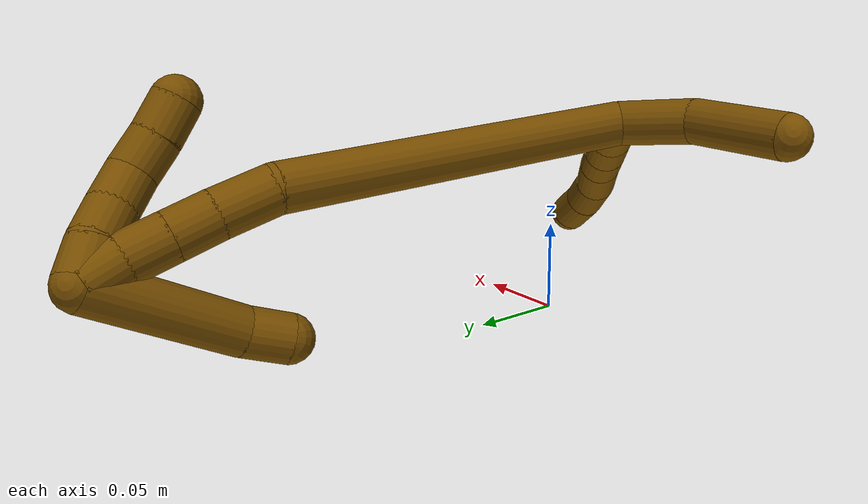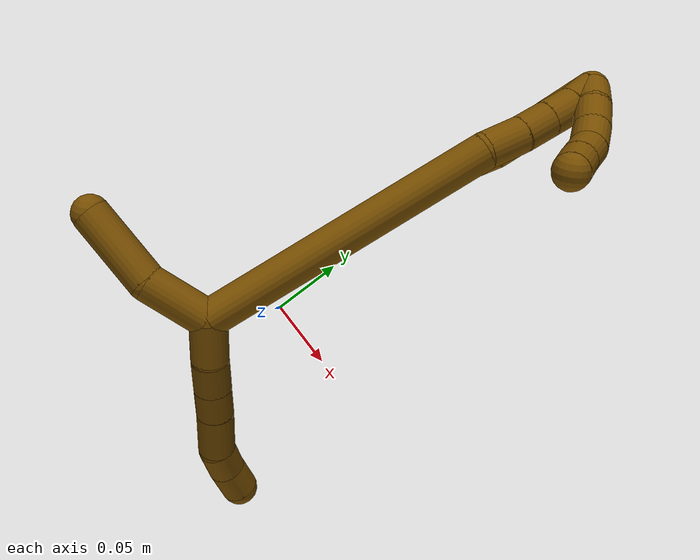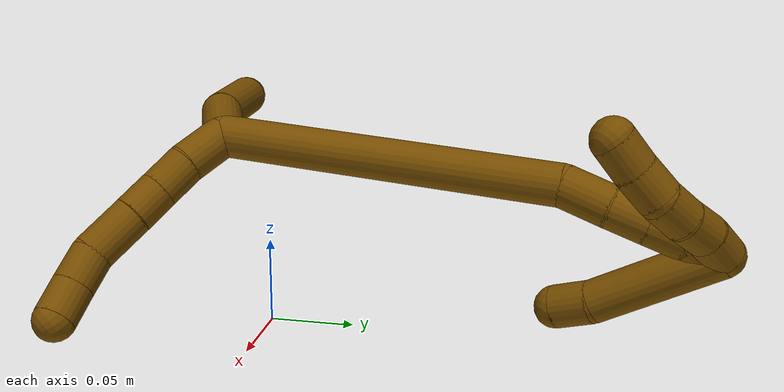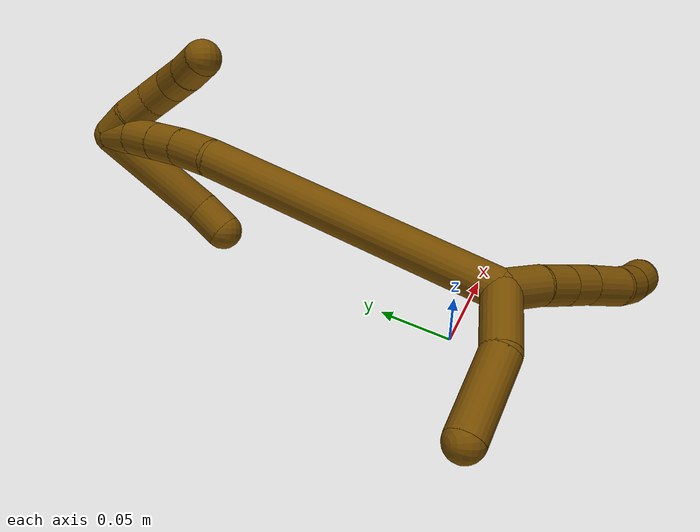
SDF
<sdf version="1.7">
 <world name="default">
  <model name="photoneo_s_sensor">
   <static>1</static>
   <pose>0 0 2 1.57079 1.57079 3.14159</pose>
   <link name="link">
    <inertial><mass>0.1</mass></inertial>
    <sensor name="sensor" type="depth">
     <update_rate>30</update_rate>
     <camera>
      <horizontal_fov>1.22</horizontal_fov>
      <image><width>1920</width><height>1200</height><format>B8G8R8</format></image>
      <clip><near>0.1</near><far>4</far></clip>
      <depth_camera><output>points</output></depth_camera>
     </camera>
     <plugin name="camera_plugin" filename="libgazebo_ros_depth_camera.so">
      <baseline>0.2</baseline>
      <alwaysOn>1</alwaysOn>
      <updateRate>0.0</updateRate>
      <cameraName>camera_ir</cameraName>
      <imageTopicName>/camera/color/image_raw</imageTopicName>
      <cameraInfoTopicName>/camera/color/camera_info</cameraInfoTopicName>
      <depthImageTopicName>/camera/depth/image_raw</depthImageTopicName>
      <depthImageCameraInfoTopicName>/camera/depth/camera_info</depthImageCameraInfoTopicName>
      <pointCloudTopicName>/camera/depth/points</pointCloudTopicName>
      <frameName>fr_optical</frameName>
      <pointCloudCutoff>0.1</pointCloudCutoff>
      <pointCloudCutoffMax>2.0</pointCloudCutoffMax>
      <distortionK1>0</distortionK1>
      <distortionK2>0</distortionK2>
      <distortionK3>0</distortionK3>
      <distortionT1>0</distortionT1>
      <distortionT2>0</distortionT2>
      <CxPrime>0</CxPrime>
      <Cx>0</Cx>
      <Cy>0</Cy>
      <focalLength>0</focalLength>
      <hackBaseline>0</hackBaseline>
     </plugin>
    </sensor>
   </link>
  </model>
  <model name="bin">
   <static>1</static>
   <link name="bottom">
    <collision name="collision-bottom">
     <pose>0 0 -0.01 0 -0 0</pose>
     <geometry><box><size>0.8 0.6 0.02</size></box></geometry>
     <surface>
      <friction><ode><mu>100</mu><mu2>100</mu2></ode></friction>
      <contact><collide_bitmask>65535</collide_bitmask></contact>
     </surface>
    </collision>
   </link>
   <link name="west_wall">
    <collision name="collision-west_wall">
     <pose>-0.41 0 0.1 0 -0 0</pose>
     <geometry><box><size>0.02 0.6 0.2</size></box></geometry>
     <surface>
      <friction><ode><mu>100</mu><mu2>100</mu2></ode></friction>
      <contact><collide_bitmask>65535</collide_bitmask></contact>
     </surface>
    </collision>
   </link>
   <link name="east_wall">
    <collision name="collision-east_wall">
     <pose>0.41 0 0.1 0 -0 0</pose>
     <geometry><box><size>0.02 0.6 0.2</size></box></geometry>
     <surface>
      <friction><ode><mu>100</mu><mu2>100</mu2></ode></friction>
      <contact><collide_bitmask>65535</collide_bitmask></contact>
     </surface>
    </collision>
   </link>
   <link name="south_wall">
    <collision name="collision-south_wall">
     <pose>0 -0.31 0.1 0 -0 0</pose>
     <geometry><box><size>0.8 0.02 0.2</size></box></geometry>
     <surface>
      <friction><ode><mu>100</mu><mu2>100</mu2></ode></friction>
      <contact><collide_bitmask>65535</collide_bitmask></contact>
     </surface>
    </collision>
   </link>
   <link name="north_wall">
    <collision name="collision-north_wall">
     <pose>0 0.31 0.1 0 -0 0</pose>
     <geometry><box><size>0.8 0.02 0.2</size></box></geometry>
     <surface>
      <friction><ode><mu>100</mu><mu2>100</mu2></ode></friction>
      <contact><collide_bitmask>65535</collide_bitmask></contact>
     </surface>
    </collision>
   </link>
  </model>
  <model name="12">
   <static>0</static>
   <link name="12">
    <collision name="collision-cylinder-e_1_2_8">
     <pose>0.000113 0.001056 -0.014886 -3.07079 0.007578 -0.213165</pose>
     <geometry><cylinder><radius>0.0125</radius><length>0.029848</length></cylinder></geometry>
     <surface>
      <friction><ode><mu>1.16</mu><mu2>1.16</mu2><slip1>0</slip1><slip2>0</slip2></ode></friction>
      <contact><ode><kp>1e+06</kp><kd>1</kd><max_vel>0</max_vel><min_depth>0.001</min_depth></ode></contact>
     </surface>
    </collision>
    <visual name="visual-cylinder-e_1_2_8">
     <pose>0.000113 0.001056 -0.014886 -3.07079 0.007578 -0.213165</pose>
     <geometry><cylinder><radius>0.0125</radius><length>0.029848</length></cylinder></geometry>
     <material><ambient>0.466667 0.301961 0 1</ambient></material>
    </visual>
    <collision name="collision-cylinder-e_2_8_9">
     <pose>-0.001324 0.003108 -0.041035 -3.05332 -0.136235 1.99259</pose>
     <geometry><cylinder><radius>0.0125</radius><length>0.022825</length></cylinder></geometry>
     <surface>
      <friction><ode><mu>1.16</mu><mu2>1.16</mu2><slip1>0</slip1><slip2>0</slip2></ode></friction>
      <contact><ode><kp>1e+06</kp><kd>1</kd><max_vel>0</max_vel><min_depth>0.001</min_depth></ode></contact>
     </surface>
    </collision>
    <visual name="visual-cylinder-e_2_8_9">
     <pose>-0.001324 0.003108 -0.041035 -3.05332 -0.136235 1.99259</pose>
     <geometry><cylinder><radius>0.0125</radius><length>0.022825</length></cylinder></geometry>
     <material><ambient>0.466667 0.301961 0 1</ambient></material>
    </visual>
    <collision name="collision-cylinder-e_3_9_10">
     <pose>-0.004222 0.005076 -0.062698 -3.04852 -0.128325 1.88723</pose>
     <geometry><cylinder><radius>0.0125</radius><length>0.021065</length></cylinder></geometry>
     <surface>
      <friction><ode><mu>1.16</mu><mu2>1.16</mu2><slip1>0</slip1><slip2>0</slip2></ode></friction>
      <contact><ode><kp>1e+06</kp><kd>1</kd><max_vel>0</max_vel><min_depth>0.001</min_depth></ode></contact>
     </surface>
    </collision>
    <visual name="visual-cylinder-e_3_9_10">
     <pose>-0.004222 0.005076 -0.062698 -3.04852 -0.128325 1.88723</pose>
     <geometry><cylinder><radius>0.0125</radius><length>0.021065</length></cylinder></geometry>
     <material><ambient>0.466667 0.301961 0 1</ambient></material>
    </visual>
    <collision name="collision-cylinder-e_4_10_11">
     <pose>-0.007854 0.006801 -0.088804 -3.09357 -0.144293 2.5</pose>
     <geometry><cylinder><radius>0.0125</radius><length>0.031776</length></cylinder></geometry>
     <surface>
      <friction><ode><mu>1.16</mu><mu2>1.16</mu2><slip1>0</slip1><slip2>0</slip2></ode></friction>
      <contact><ode><kp>1e+06</kp><kd>1</kd><max_vel>0</max_vel><min_depth>0.001</min_depth></ode></contact>
     </surface>
    </collision>
    <visual name="visual-cylinder-e_4_10_11">
     <pose>-0.007854 0.006801 -0.088804 -3.09357 -0.144293 2.5</pose>
     <geometry><cylinder><radius>0.0125</radius><length>0.031776</length></cylinder></geometry>
     <material><ambient>0.466667 0.301961 0 1</ambient></material>
    </visual>
    <collision name="collision-cylinder-e_5_11_12">
     <pose>-0.013383 0.01088 -0.114557 -2.82215 -0.297485 1.49852</pose>
     <geometry><cylinder><radius>0.0125</radius><length>0.022139</length></cylinder></geometry>
     <surface>
      <friction><ode><mu>1.16</mu><mu2>1.16</mu2><slip1>0</slip1><slip2>0</slip2></ode></friction>
      <contact><ode><kp>1e+06</kp><kd>1</kd><max_vel>0</max_vel><min_depth>0.001</min_depth></ode></contact>
     </surface>
    </collision>
    <visual name="visual-cylinder-e_5_11_12">
     <pose>-0.013383 0.01088 -0.114557 -2.82215 -0.297485 1.49852</pose>
     <geometry><cylinder><radius>0.0125</radius><length>0.022139</length></cylinder></geometry>
     <material><ambient>0.466667 0.301961 0 1</ambient></material>
    </visual>
    <collision name="collision-cylinder-e_6_12_6">
     <pose>-0.01921 0.018884 -0.134416 -2.69645 -0.233162 0.955032</pose>
     <geometry><cylinder><radius>0.0125</radius><length>0.022347</length></cylinder></geometry>
     <surface>
      <friction><ode><mu>1.16</mu><mu2>1.16</mu2><slip1>0</slip1><slip2>0</slip2></ode></friction>
      <contact><ode><kp>1e+06</kp><kd>1</kd><max_vel>0</max_vel><min_depth>0.001</min_depth></ode></contact>
     </surface>
    </collision>
    <visual name="visual-cylinder-e_6_12_6">
     <pose>-0.01921 0.018884 -0.134416 -2.69645 -0.233162 0.955032</pose>
     <geometry><cylinder><radius>0.0125</radius><length>0.022347</length></cylinder></geometry>
     <material><ambient>0.466667 0.301961 0 1</ambient></material>
    </visual>
    <collision name="collision-cylinder-e_1_2_13">
     <pose>-0.002742 -0.019636 0.009624 1.11509 -0.124736 -0.077839</pose>
     <geometry><cylinder><radius>0.0125</radius><length>0.044078</length></cylinder></geometry>
     <surface>
      <friction><ode><mu>1.16</mu><mu2>1.16</mu2><slip1>0</slip1><slip2>0</slip2></ode></friction>
      <contact><ode><kp>1e+06</kp><kd>1</kd><max_vel>0</max_vel><min_depth>0.001</min_depth></ode></contact>
     </surface>
    </collision>
    <visual name="visual-cylinder-e_1_2_13">
     <pose>-0.002742 -0.019636 0.009624 1.11509 -0.124736 -0.077839</pose>
     <geometry><cylinder><radius>0.0125</radius><length>0.044078</length></cylinder></geometry>
     <material><ambient>0.466667 0.301961 0 1</ambient></material>
    </visual>
    <collision name="collision-cylinder-e_2_13_5">
     <pose>-0.015275 -0.05894 0.036543 0.849514 -0.357762 -0.163197</pose>
     <geometry><cylinder><radius>0.0125</radius><length>0.055922</length></cylinder></geometry>
     <surface>
      <friction><ode><mu>1.16</mu><mu2>1.16</mu2><slip1>0</slip1><slip2>0</slip2></ode></friction>
      <contact><ode><kp>1e+06</kp><kd>1</kd><max_vel>0</max_vel><min_depth>0.001</min_depth></ode></contact>
     </surface>
    </collision>
    <visual name="visual-cylinder-e_2_13_5">
     <pose>-0.015275 -0.05894 0.036543 0.849514 -0.357762 -0.163197</pose>
     <geometry><cylinder><radius>0.0125</radius><length>0.055922</length></cylinder></geometry>
     <material><ambient>0.466667 0.301961 0 1</ambient></material>
    </visual>
    <collision name="collision-cylinder-e_1_2_14">
     <pose>-0.03006 0.082792 0.053447 -0.997551 -0.296075 0.162109</pose>
     <geometry><cylinder><radius>0.0125</radius><length>0.206055</length></cylinder></geometry>
     <surface>
      <friction><ode><mu>1.16</mu><mu2>1.16</mu2><slip1>0</slip1><slip2>0</slip2></ode></friction>
      <contact><ode><kp>1e+06</kp><kd>1</kd><max_vel>0</max_vel><min_depth>0.001</min_depth></ode></contact>
     </surface>
    </collision>
    <visual name="visual-cylinder-e_1_2_14">
     <pose>-0.03006 0.082792 0.053447 -0.997551 -0.296075 0.162109</pose>
     <geometry><cylinder><radius>0.0125</radius><length>0.206055</length></cylinder></geometry>
     <material><ambient>0.466667 0.301961 0 1</ambient></material>
    </visual>
    <collision name="collision-cylinder-e_2_14_15">
     <pose>-0.06691 0.177602 0.111395 -1.21242 -0.486623 0.340852</pose>
     <geometry><cylinder><radius>0.0125</radius><length>0.029038</length></cylinder></geometry>
     <surface>
      <friction><ode><mu>1.16</mu><mu2>1.16</mu2><slip1>0</slip1><slip2>0</slip2></ode></friction>
      <contact><ode><kp>1e+06</kp><kd>1</kd><max_vel>0</max_vel><min_depth>0.001</min_depth></ode></contact>
     </surface>
    </collision>
    <visual name="visual-cylinder-e_2_14_15">
     <pose>-0.06691 0.177602 0.111395 -1.21242 -0.486623 0.340852</pose>
     <geometry><cylinder><radius>0.0125</radius><length>0.029038</length></cylinder></geometry>
     <material><ambient>0.466667 0.301961 0 1</ambient></material>
    </visual>
    <collision name="collision-cylinder-e_3_15_16">
     <pose>-0.079512 0.198367 0.120056 -1.12689 -0.54051 0.346525</pose>
     <geometry><cylinder><radius>0.0125</radius><length>0.022593</length></cylinder></geometry>
     <surface>
      <friction><ode><mu>1.16</mu><mu2>1.16</mu2><slip1>0</slip1><slip2>0</slip2></ode></friction>
      <contact><ode><kp>1e+06</kp><kd>1</kd><max_vel>0</max_vel><min_depth>0.001</min_depth></ode></contact>
     </surface>
    </collision>
    <visual name="visual-cylinder-e_3_15_16">
     <pose>-0.079512 0.198367 0.120056 -1.12689 -0.54051 0.346525</pose>
     <geometry><cylinder><radius>0.0125</radius><length>0.022593</length></cylinder></geometry>
     <material><ambient>0.466667 0.301961 0 1</ambient></material>
    </visual>
    <collision name="collision-cylinder-e_4_16_17">
     <pose>-0.090996 0.215684 0.128349 -1.12145 -0.537445 0.342472</pose>
     <geometry><cylinder><radius>0.0125</radius><length>0.022152</length></cylinder></geometry>
     <surface>
      <friction><ode><mu>1.16</mu><mu2>1.16</mu2><slip1>0</slip1><slip2>0</slip2></ode></friction>
      <contact><ode><kp>1e+06</kp><kd>1</kd><max_vel>0</max_vel><min_depth>0.001</min_depth></ode></contact>
     </surface>
    </collision>
    <visual name="visual-cylinder-e_4_16_17">
     <pose>-0.090996 0.215684 0.128349 -1.12145 -0.537445 0.342472</pose>
     <geometry><cylinder><radius>0.0125</radius><length>0.022152</length></cylinder></geometry>
     <material><ambient>0.466667 0.301961 0 1</ambient></material>
    </visual>
    <collision name="collision-cylinder-e_5_17_1">
     <pose>-0.102706 0.231121 0.136725 -1.01728 -0.642427 0.36688</pose>
     <geometry><cylinder><radius>0.0125</radius><length>0.020162</length></cylinder></geometry>
     <surface>
      <friction><ode><mu>1.16</mu><mu2>1.16</mu2><slip1>0</slip1><slip2>0</slip2></ode></friction>
      <contact><ode><kp>1e+06</kp><kd>1</kd><max_vel>0</max_vel><min_depth>0.001</min_depth></ode></contact>
     </surface>
    </collision>
    <visual name="visual-cylinder-e_5_17_1">
     <pose>-0.102706 0.231121 0.136725 -1.01728 -0.642427 0.36688</pose>
     <geometry><cylinder><radius>0.0125</radius><length>0.020162</length></cylinder></geometry>
     <material><ambient>0.466667 0.301961 0 1</ambient></material>
    </visual>
    <collision name="collision-cylinder-e_1_1_18">
     <pose>-0.116309 0.210793 0.114392 2.34469 -0.196339 -0.459635</pose>
     <geometry><cylinder><radius>0.0125</radius><length>0.077537</length></cylinder></geometry>
     <surface>
      <friction><ode><mu>1.16</mu><mu2>1.16</mu2><slip1>0</slip1><slip2>0</slip2></ode></friction>
      <contact><ode><kp>1e+06</kp><kd>1</kd><max_vel>0</max_vel><min_depth>0.001</min_depth></ode></contact>
     </surface>
    </collision>
    <visual name="visual-cylinder-e_1_1_18">
     <pose>-0.116309 0.210793 0.114392 2.34469 -0.196339 -0.459635</pose>
     <geometry><cylinder><radius>0.0125</radius><length>0.077537</length></cylinder></geometry>
     <material><ambient>0.466667 0.301961 0 1</ambient></material>
    </visual>
    <collision name="collision-cylinder-e_2_18_4">
     <pose>-0.12516 0.174129 0.081916 2.12803 -0.114919 -0.2065</pose>
     <geometry><cylinder><radius>0.0125</radius><length>0.022463</length></cylinder></geometry>
     <surface>
      <friction><ode><mu>1.16</mu><mu2>1.16</mu2><slip1>0</slip1><slip2>0</slip2></ode></friction>
      <contact><ode><kp>1e+06</kp><kd>1</kd><max_vel>0</max_vel><min_depth>0.001</min_depth></ode></contact>
     </surface>
    </collision>
    <visual name="visual-cylinder-e_2_18_4">
     <pose>-0.12516 0.174129 0.081916 2.12803 -0.114919 -0.2065</pose>
     <geometry><cylinder><radius>0.0125</radius><length>0.022463</length></cylinder></geometry>
     <material><ambient>0.466667 0.301961 0 1</ambient></material>
    </visual>
    <collision name="collision-cylinder-e_1_1_19">
     <pose>-0.09935 0.23733 0.13761 2.94823 1.22161 2.86629</pose>
     <geometry><cylinder><radius>0.0125</radius><length>0.02</length></cylinder></geometry>
     <surface>
      <friction><ode><mu>1.16</mu><mu2>1.16</mu2><slip1>0</slip1><slip2>0</slip2></ode></friction>
      <contact><ode><kp>1e+06</kp><kd>1</kd><max_vel>0</max_vel><min_depth>0.001</min_depth></ode></contact>
     </surface>
    </collision>
    <visual name="visual-cylinder-e_1_1_19">
     <pose>-0.09935 0.23733 0.13761 2.94823 1.22161 2.86629</pose>
     <geometry><cylinder><radius>0.0125</radius><length>0.02</length></cylinder></geometry>
     <material><ambient>0.466667 0.301961 0 1</ambient></material>
    </visual>
    <collision name="collision-cylinder-e_2_19_20">
     <pose>-0.081285 0.235564 0.129391 2.91757 1.04872 2.75743</pose>
     <geometry><cylinder><radius>0.0125</radius><length>0.02</length></cylinder></geometry>
     <surface>
      <friction><ode><mu>1.16</mu><mu2>1.16</mu2><slip1>0</slip1><slip2>0</slip2></ode></friction>
      <contact><ode><kp>1e+06</kp><kd>1</kd><max_vel>0</max_vel><min_depth>0.001</min_depth></ode></contact>
     </surface>
    </collision>
    <visual name="visual-cylinder-e_2_19_20">
     <pose>-0.081285 0.235564 0.129391 2.91757 1.04872 2.75743</pose>
     <geometry><cylinder><radius>0.0125</radius><length>0.02</length></cylinder></geometry>
     <material><ambient>0.466667 0.301961 0 1</ambient></material>
    </visual>
    <collision name="collision-cylinder-e_3_20_21">
     <pose>-0.063665 0.232238 0.120663 2.6205 1.10886 2.32847</pose>
     <geometry><cylinder><radius>0.0125</radius><length>0.02</length></cylinder></geometry>
     <surface>
      <friction><ode><mu>1.16</mu><mu2>1.16</mu2><slip1>0</slip1><slip2>0</slip2></ode></friction>
      <contact><ode><kp>1e+06</kp><kd>1</kd><max_vel>0</max_vel><min_depth>0.001</min_depth></ode></contact>
     </surface>
    </collision>
    <visual name="visual-cylinder-e_3_20_21">
     <pose>-0.063665 0.232238 0.120663 2.6205 1.10886 2.32847</pose>
     <geometry><cylinder><radius>0.0125</radius><length>0.02</length></cylinder></geometry>
     <material><ambient>0.466667 0.301961 0 1</ambient></material>
    </visual>
    <collision name="collision-cylinder-e_4_21_22">
     <pose>-0.045878 0.225544 0.115418 1.87 1.08346 1.36811</pose>
     <geometry><cylinder><radius>0.0125</radius><length>0.02</length></cylinder></geometry>
     <surface>
      <friction><ode><mu>1.16</mu><mu2>1.16</mu2><slip1>0</slip1><slip2>0</slip2></ode></friction>
      <contact><ode><kp>1e+06</kp><kd>1</kd><max_vel>0</max_vel><min_depth>0.001</min_depth></ode></contact>
     </surface>
    </collision>
    <visual name="visual-cylinder-e_4_21_22">
     <pose>-0.045878 0.225544 0.115418 1.87 1.08346 1.36811</pose>
     <geometry><cylinder><radius>0.0125</radius><length>0.02</length></cylinder></geometry>
     <material><ambient>0.466667 0.301961 0 1</ambient></material>
    </visual>
    <collision name="collision-cylinder-e_5_22_3">
     <pose>-0.027874 0.217189 0.11309 1.81021 1.15986 1.39051</pose>
     <geometry><cylinder><radius>0.0125</radius><length>0.02</length></cylinder></geometry>
     <surface>
      <friction><ode><mu>1.16</mu><mu2>1.16</mu2><slip1>0</slip1><slip2>0</slip2></ode></friction>
      <contact><ode><kp>1e+06</kp><kd>1</kd><max_vel>0</max_vel><min_depth>0.001</min_depth></ode></contact>
     </surface>
    </collision>
    <visual name="visual-cylinder-e_5_22_3">
     <pose>-0.027874 0.217189 0.11309 1.81021 1.15986 1.39051</pose>
     <geometry><cylinder><radius>0.0125</radius><length>0.02</length></cylinder></geometry>
     <material><ambient>0.466667 0.301961 0 1</ambient></material>
    </visual>
    <collision name="collision-sphere-3">
     <pose>-0.018707 0.213308 0.112143 0 -0 0</pose>
     <geometry><sphere><radius>0.0125</radius></sphere></geometry>
     <surface>
      <friction><ode><mu>1.16</mu><mu2>1.16</mu2><slip1>0</slip1><slip2>0</slip2></ode></friction>
      <contact><ode><kp>1e+06</kp><kd>1</kd><max_vel>0</max_vel><min_depth>0.001</min_depth></ode></contact>
     </surface>
    </collision>
    <visual name="visual-sphere-3">
     <pose>-0.018707 0.213308 0.112143 0 -0 0</pose>
     <geometry><sphere><radius>0.0125</radius></sphere></geometry>
     <material><ambient>0.466667 0.301961 0 1</ambient></material>
    </visual>
    <collision name="collision-sphere-22">
     <pose>-0.037042 0.22107 0.114037 0 -0 0</pose>
     <geometry><sphere><radius>0.0125</radius></sphere></geometry>
     <surface>
      <friction><ode><mu>1.16</mu><mu2>1.16</mu2><slip1>0</slip1><slip2>0</slip2></ode></friction>
      <contact><ode><kp>1e+06</kp><kd>1</kd><max_vel>0</max_vel><min_depth>0.001</min_depth></ode></contact>
     </surface>
    </collision>
    <visual name="visual-sphere-22">
     <pose>-0.037042 0.22107 0.114037 0 -0 0</pose>
     <geometry><sphere><radius>0.0125</radius></sphere></geometry>
     <material><ambient>0.466667 0.301961 0 1</ambient></material>
    </visual>
    <collision name="collision-sphere-21">
     <pose>-0.054713 0.230019 0.116798 0 -0 0</pose>
     <geometry><sphere><radius>0.0125</radius></sphere></geometry>
     <surface>
      <friction><ode><mu>1.16</mu><mu2>1.16</mu2><slip1>0</slip1><slip2>0</slip2></ode></friction>
      <contact><ode><kp>1e+06</kp><kd>1</kd><max_vel>0</max_vel><min_depth>0.001</min_depth></ode></contact>
     </surface>
    </collision>
    <visual name="visual-sphere-21">
     <pose>-0.054713 0.230019 0.116798 0 -0 0</pose>
     <geometry><sphere><radius>0.0125</radius></sphere></geometry>
     <material><ambient>0.466667 0.301961 0 1</ambient></material>
    </visual>
    <collision name="collision-sphere-20">
     <pose>-0.072617 0.234456 0.124529 0 -0 0</pose>
     <geometry><sphere><radius>0.0125</radius></sphere></geometry>
     <surface>
      <friction><ode><mu>1.16</mu><mu2>1.16</mu2><slip1>0</slip1><slip2>0</slip2></ode></friction>
      <contact><ode><kp>1e+06</kp><kd>1</kd><max_vel>0</max_vel><min_depth>0.001</min_depth></ode></contact>
     </surface>
    </collision>
    <visual name="visual-sphere-20">
     <pose>-0.072617 0.234456 0.124529 0 -0 0</pose>
     <geometry><sphere><radius>0.0125</radius></sphere></geometry>
     <material><ambient>0.466667 0.301961 0 1</ambient></material>
    </visual>
    <collision name="collision-sphere-19">
     <pose>-0.089953 0.236672 0.134253 0 -0 0</pose>
     <geometry><sphere><radius>0.0125</radius></sphere></geometry>
     <surface>
      <friction><ode><mu>1.16</mu><mu2>1.16</mu2><slip1>0</slip1><slip2>0</slip2></ode></friction>
      <contact><ode><kp>1e+06</kp><kd>1</kd><max_vel>0</max_vel><min_depth>0.001</min_depth></ode></contact>
     </surface>
    </collision>
    <visual name="visual-sphere-19">
     <pose>-0.089953 0.236672 0.134253 0 -0 0</pose>
     <geometry><sphere><radius>0.0125</radius></sphere></geometry>
     <material><ambient>0.466667 0.301961 0 1</ambient></material>
    </visual>
    <collision name="collision-sphere-12">
     <pose>-0.016628 0.014203 -0.124605 0 -0 0</pose>
     <geometry><sphere><radius>0.0125</radius></sphere></geometry>
     <surface>
      <friction><ode><mu>1.16</mu><mu2>1.16</mu2><slip1>0</slip1><slip2>0</slip2></ode></friction>
      <contact><ode><kp>1e+06</kp><kd>1</kd><max_vel>0</max_vel><min_depth>0.001</min_depth></ode></contact>
     </surface>
    </collision>
    <visual name="visual-sphere-12">
     <pose>-0.016628 0.014203 -0.124605 0 -0 0</pose>
     <geometry><sphere><radius>0.0125</radius></sphere></geometry>
     <material><ambient>0.466667 0.301961 0 1</ambient></material>
    </visual>
    <collision name="collision-sphere-11">
     <pose>-0.010139 0.007556 -0.104509 0 -0 0</pose>
     <geometry><sphere><radius>0.0125</radius></sphere></geometry>
     <surface>
      <friction><ode><mu>1.16</mu><mu2>1.16</mu2><slip1>0</slip1><slip2>0</slip2></ode></friction>
      <contact><ode><kp>1e+06</kp><kd>1</kd><max_vel>0</max_vel><min_depth>0.001</min_depth></ode></contact>
     </surface>
    </collision>
    <visual name="visual-sphere-11">
     <pose>-0.010139 0.007556 -0.104509 0 -0 0</pose>
     <geometry><sphere><radius>0.0125</radius></sphere></geometry>
     <material><ambient>0.466667 0.301961 0 1</ambient></material>
    </visual>
    <collision name="collision-sphere-10">
     <pose>-0.005569 0.006047 -0.073099 0 -0 0</pose>
     <geometry><sphere><radius>0.0125</radius></sphere></geometry>
     <surface>
      <friction><ode><mu>1.16</mu><mu2>1.16</mu2><slip1>0</slip1><slip2>0</slip2></ode></friction>
      <contact><ode><kp>1e+06</kp><kd>1</kd><max_vel>0</max_vel><min_depth>0.001</min_depth></ode></contact>
     </surface>
    </collision>
    <visual name="visual-sphere-10">
     <pose>-0.005569 0.006047 -0.073099 0 -0 0</pose>
     <geometry><sphere><radius>0.0125</radius></sphere></geometry>
     <material><ambient>0.466667 0.301961 0 1</ambient></material>
    </visual>
    <collision name="collision-sphere-9">
     <pose>-0.002874 0.004105 -0.052298 0 -0 0</pose>
     <geometry><sphere><radius>0.0125</radius></sphere></geometry>
     <surface>
      <friction><ode><mu>1.16</mu><mu2>1.16</mu2><slip1>0</slip1><slip2>0</slip2></ode></friction>
      <contact><ode><kp>1e+06</kp><kd>1</kd><max_vel>0</max_vel><min_depth>0.001</min_depth></ode></contact>
     </surface>
    </collision>
    <visual name="visual-sphere-9">
     <pose>-0.002874 0.004105 -0.052298 0 -0 0</pose>
     <geometry><sphere><radius>0.0125</radius></sphere></geometry>
     <material><ambient>0.466667 0.301961 0 1</ambient></material>
    </visual>
    <collision name="collision-sphere-2">
     <geometry><sphere><radius>0.0125</radius></sphere></geometry>
     <surface>
      <friction><ode><mu>1.16</mu><mu2>1.16</mu2><slip1>0</slip1><slip2>0</slip2></ode></friction>
      <contact><ode><kp>1e+06</kp><kd>1</kd><max_vel>0</max_vel><min_depth>0.001</min_depth></ode></contact>
     </surface>
    </collision>
    <visual name="visual-sphere-2">
     <geometry><sphere><radius>0.0125</radius></sphere></geometry>
     <material><ambient>0.466667 0.301961 0 1</ambient></material>
    </visual>
    <collision name="collision-sphere-8">
     <pose>0.000226 0.002111 -0.029773 0 -0 0</pose>
     <geometry><sphere><radius>0.0125</radius></sphere></geometry>
     <surface>
      <friction><ode><mu>1.16</mu><mu2>1.16</mu2><slip1>0</slip1><slip2>0</slip2></ode></friction>
      <contact><ode><kp>1e+06</kp><kd>1</kd><max_vel>0</max_vel><min_depth>0.001</min_depth></ode></contact>
     </surface>
    </collision>
    <visual name="visual-sphere-8">
     <pose>0.000226 0.002111 -0.029773 0 -0 0</pose>
     <geometry><sphere><radius>0.0125</radius></sphere></geometry>
     <material><ambient>0.466667 0.301961 0 1</ambient></material>
    </visual>
    <collision name="collision-sphere-6">
     <pose>-0.021791 0.023565 -0.144228 0 -0 0</pose>
     <geometry><sphere><radius>0.0125</radius></sphere></geometry>
     <surface>
      <friction><ode><mu>1.16</mu><mu2>1.16</mu2><slip1>0</slip1><slip2>0</slip2></ode></friction>
      <contact><ode><kp>1e+06</kp><kd>1</kd><max_vel>0</max_vel><min_depth>0.001</min_depth></ode></contact>
     </surface>
    </collision>
    <visual name="visual-sphere-6">
     <pose>-0.021791 0.023565 -0.144228 0 -0 0</pose>
     <geometry><sphere><radius>0.0125</radius></sphere></geometry>
     <material><ambient>0.466667 0.301961 0 1</ambient></material>
    </visual>
    <collision name="collision-sphere-13">
     <pose>-0.005484 -0.039272 0.019248 0 -0 0</pose>
     <geometry><sphere><radius>0.0125</radius></sphere></geometry>
     <surface>
      <friction><ode><mu>1.16</mu><mu2>1.16</mu2><slip1>0</slip1><slip2>0</slip2></ode></friction>
      <contact><ode><kp>1e+06</kp><kd>1</kd><max_vel>0</max_vel><min_depth>0.001</min_depth></ode></contact>
     </surface>
    </collision>
    <visual name="visual-sphere-13">
     <pose>-0.005484 -0.039272 0.019248 0 -0 0</pose>
     <geometry><sphere><radius>0.0125</radius></sphere></geometry>
     <material><ambient>0.466667 0.301961 0 1</ambient></material>
    </visual>
    <collision name="collision-sphere-5">
     <pose>-0.025067 -0.078609 0.053838 0 -0 0</pose>
     <geometry><sphere><radius>0.0125</radius></sphere></geometry>
     <surface>
      <friction><ode><mu>1.16</mu><mu2>1.16</mu2><slip1>0</slip1><slip2>0</slip2></ode></friction>
      <contact><ode><kp>1e+06</kp><kd>1</kd><max_vel>0</max_vel><min_depth>0.001</min_depth></ode></contact>
     </surface>
    </collision>
    <visual name="visual-sphere-5">
     <pose>-0.025067 -0.078609 0.053838 0 -0 0</pose>
     <geometry><sphere><radius>0.0125</radius></sphere></geometry>
     <material><ambient>0.466667 0.301961 0 1</ambient></material>
    </visual>
    <collision name="collision-sphere-14">
     <pose>-0.06012 0.165583 0.106893 0 -0 0</pose>
     <geometry><sphere><radius>0.0125</radius></sphere></geometry>
     <surface>
      <friction><ode><mu>1.16</mu><mu2>1.16</mu2><slip1>0</slip1><slip2>0</slip2></ode></friction>
      <contact><ode><kp>1e+06</kp><kd>1</kd><max_vel>0</max_vel><min_depth>0.001</min_depth></ode></contact>
     </surface>
    </collision>
    <visual name="visual-sphere-14">
     <pose>-0.06012 0.165583 0.106893 0 -0 0</pose>
     <geometry><sphere><radius>0.0125</radius></sphere></geometry>
     <material><ambient>0.466667 0.301961 0 1</ambient></material>
    </visual>
    <collision name="collision-sphere-15">
     <pose>-0.0737 0.18962 0.115896 0 -0 0</pose>
     <geometry><sphere><radius>0.0125</radius></sphere></geometry>
     <surface>
      <friction><ode><mu>1.16</mu><mu2>1.16</mu2><slip1>0</slip1><slip2>0</slip2></ode></friction>
      <contact><ode><kp>1e+06</kp><kd>1</kd><max_vel>0</max_vel><min_depth>0.001</min_depth></ode></contact>
     </surface>
    </collision>
    <visual name="visual-sphere-15">
     <pose>-0.0737 0.18962 0.115896 0 -0 0</pose>
     <geometry><sphere><radius>0.0125</radius></sphere></geometry>
     <material><ambient>0.466667 0.301961 0 1</ambient></material>
    </visual>
    <collision name="collision-sphere-16">
     <pose>-0.085325 0.207114 0.124216 0 -0 0</pose>
     <geometry><sphere><radius>0.0125</radius></sphere></geometry>
     <surface>
      <friction><ode><mu>1.16</mu><mu2>1.16</mu2><slip1>0</slip1><slip2>0</slip2></ode></friction>
      <contact><ode><kp>1e+06</kp><kd>1</kd><max_vel>0</max_vel><min_depth>0.001</min_depth></ode></contact>
     </surface>
    </collision>
    <visual name="visual-sphere-16">
     <pose>-0.085325 0.207114 0.124216 0 -0 0</pose>
     <geometry><sphere><radius>0.0125</radius></sphere></geometry>
     <material><ambient>0.466667 0.301961 0 1</ambient></material>
    </visual>
    <collision name="collision-sphere-17">
     <pose>-0.096666 0.224255 0.132482 0 -0 0</pose>
     <geometry><sphere><radius>0.0125</radius></sphere></geometry>
     <surface>
      <friction><ode><mu>1.16</mu><mu2>1.16</mu2><slip1>0</slip1><slip2>0</slip2></ode></friction>
      <contact><ode><kp>1e+06</kp><kd>1</kd><max_vel>0</max_vel><min_depth>0.001</min_depth></ode></contact>
     </surface>
    </collision>
    <visual name="visual-sphere-17">
     <pose>-0.096666 0.224255 0.132482 0 -0 0</pose>
     <geometry><sphere><radius>0.0125</radius></sphere></geometry>
     <material><ambient>0.466667 0.301961 0 1</ambient></material>
    </visual>
    <collision name="collision-sphere-1">
     <pose>-0.108746 0.237987 0.140968 0 -0 0</pose>
     <geometry><sphere><radius>0.0125</radius></sphere></geometry>
     <surface>
      <friction><ode><mu>1.16</mu><mu2>1.16</mu2><slip1>0</slip1><slip2>0</slip2></ode></friction>
      <contact><ode><kp>1e+06</kp><kd>1</kd><max_vel>0</max_vel><min_depth>0.001</min_depth></ode></contact>
     </surface>
    </collision>
    <visual name="visual-sphere-1">
     <pose>-0.108746 0.237987 0.140968 0 -0 0</pose>
     <geometry><sphere><radius>0.0125</radius></sphere></geometry>
     <material><ambient>0.466667 0.301961 0 1</ambient></material>
    </visual>
    <collision name="collision-sphere-18">
     <pose>-0.123872 0.183598 0.087817 0 -0 0</pose>
     <geometry><sphere><radius>0.0125</radius></sphere></geometry>
     <surface>
      <friction><ode><mu>1.16</mu><mu2>1.16</mu2><slip1>0</slip1><slip2>0</slip2></ode></friction>
      <contact><ode><kp>1e+06</kp><kd>1</kd><max_vel>0</max_vel><min_depth>0.001</min_depth></ode></contact>
     </surface>
    </collision>
    <visual name="visual-sphere-18">
     <pose>-0.123872 0.183598 0.087817 0 -0 0</pose>
     <geometry><sphere><radius>0.0125</radius></sphere></geometry>
     <material><ambient>0.466667 0.301961 0 1</ambient></material>
    </visual>
    <collision name="collision-sphere-4">
     <pose>-0.126448 0.164659 0.076016 0 -0 0</pose>
     <geometry><sphere><radius>0.0125</radius></sphere></geometry>
     <surface>
      <friction><ode><mu>1.16</mu><mu2>1.16</mu2><slip1>0</slip1><slip2>0</slip2></ode></friction>
      <contact><ode><kp>1e+06</kp><kd>1</kd><max_vel>0</max_vel><min_depth>0.001</min_depth></ode></contact>
     </surface>
    </collision>
    <visual name="visual-sphere-4">
     <pose>-0.126448 0.164659 0.076016 0 -0 0</pose>
     <geometry><sphere><radius>0.0125</radius></sphere></geometry>
     <material><ambient>0.466667 0.301961 0 1</ambient></material>
    </visual>
    <inertial>
     <pose>-0.045702 0.101701 0.04933 0 -0 0</pose>
     <mass>0.75</mass>
     <inertia>
      <ixx>0.000862</ixx>
      <ixy>0</ixy>
      <ixz>0</ixz>
      <iyy>0.000537</iyy>
      <iyz>0</iyz>
      <izz>-0.000322</izz>
     </inertia>
    </inertial>
   </link>
   <pose>-0.018469 -0.033278 0.107673 -0.073248 -1.11533 -0.679605</pose>
  </model>
 </world>
</sdf>
